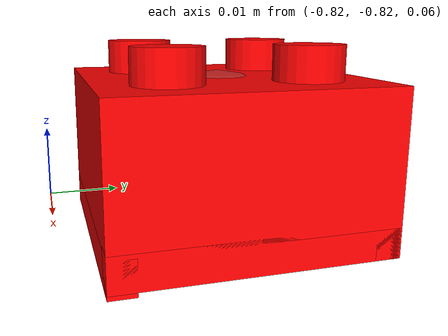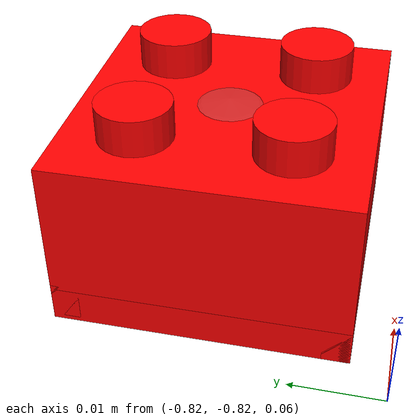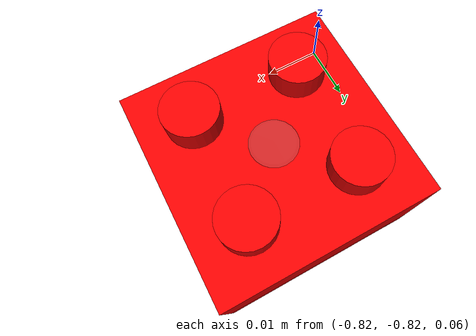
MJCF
<mujoco model='brick_model'>

    <asset>
        <material name='transparent' rgba='0 0 0 0' reflectance='.0'/>
        <material name='solid_color' rgba='1 0 0 1' reflectance='.0'/>
    </asset>

    <worldbody>
        <body name='body' pos='-0.8 -0.8 0.06'>
            <geom name='main_hull' type='box' pos='0 0 0.0132' size='0.016 0.016 0.013' mass='0.0' friction='1 1'
                  contype='0' material='transparent'/>
            <geom name='main_t' type='box' pos='0 0 0.01165' size='0.0159 0.0159 0.00765' mass='1e-6' conaffinity='2'
                  contype='2' material='solid_color'/>
            <geom name='wall_lx' type='box' pos='-0.0144 0 0.002' size='0.0015 0.0159 0.002' mass='0.0' conaffinity='2'
                  contype='0' material='solid_color'/>
            <geom name='wall_rx' type='box' pos='0.0144 0 0.0025' size='0.0015 0.0159 0.002' mass='0.0' conaffinity='2'
                  contype='0' material='solid_color'/>
            <geom name='wall_ly' type='box' pos='0 -0.0144 0.002' size='0.0159 0.0015 0.002' mass='0.0' conaffinity='2'
                  contype='0' material='solid_color'/>
            <geom name='wall_ry' type='box' pos='0 0.0144 0.0025' size='0.0159 0.0015 0.002' mass='0.0' conaffinity='2'
                  contype='0' material='solid_color'/>
            <geom name='knob_ll' type='cylinder' size='0.004 0.002' pos='+0.008 +0.008 0.0213' mass='0.01'
                  conaffinity='0' contype='2' material='solid_color'/>
            <geom name='knob_lr' type='cylinder' size='0.004 0.002' pos='+0.008 -0.008 0.0213' mass='0.01'
                  conaffinity='0' contype='2' material='solid_color'/>
            <geom name='knob_rl' type='cylinder' size='0.004 0.002' pos='-0.008 +0.008 0.0213' mass='0.01'
                  conaffinity='0' contype='2' material='solid_color'/>
            <geom name='knob_rr' type='cylinder' size='0.004 0.002' pos='-0.008 -0.008 0.0213' mass='0.01'
                  conaffinity='0' contype='2' material='solid_color'/>
            <site name='target' type='sphere' pos='0 0 0.01' size='.01' euler='0 0 0' rgba='.5 .5 .5 .3'/>
        </body>
    </worldbody>

</mujoco>
